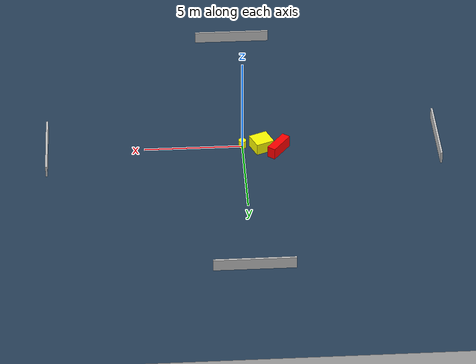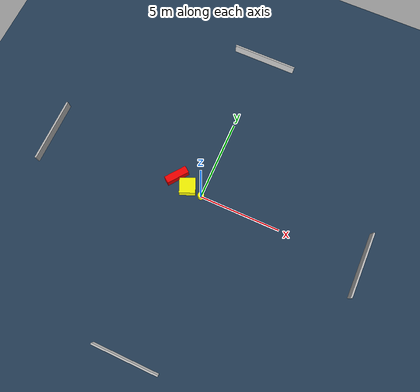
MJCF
<?xml version="1.0" ?>
<mujoco model="generated_environment">
  <option timestep="0.01" integrator="RK4" cone="elliptic"/>
  <default>
    <geom density="1"/>
  </default>
  <asset>
    <texture builtin="gradient" height="3072" name="skybox" rgb1="0.3 0.5 0.7" rgb2="0 0 0" type="skybox" width="512"/>
    <texture builtin="checker" height="300" name="groundplane" rgb1="0.2 0.3 0.4" rgb2="0.1 0.2 0.3" type="2d" width="300"/>
    <material name="groundplane" reflectance="0.2" texrepeat="5 5" texture="groundplane"/>
  </asset>
  <worldbody>
    <light dir="0 0 -1" directional="true" pos="0 0 1.5"/>
    <geom condim="3" friction="0.5 0.005 0.001" material="groundplane" name="floor" pos="0 0 0" size="0 0 0.05" type="plane"/>
    <body name="walls">
      <geom name="wall_1" condim="4" pos="-10.0 0.0 0.3" rgba="0.800000011920929 0.800000011920929 0.800000011920929 1.0" size="0.05 2.0 0.3" type="box"/>
      <geom name="wall_2" condim="4" pos="10.0 0.0 0.3" rgba="0.800000011920929 0.800000011920929 0.800000011920929 1.0" size="0.05 2.0 0.3" type="box"/>
      <geom name="wall_3" condim="4" pos="0.0 -10.0 0.3" rgba="0.800000011920929 0.800000011920929 0.800000011920929 1.0" size="2.0 0.05 0.3" type="box"/>
      <geom name="wall_4" condim="4" pos="0.0 10.0 0.3" rgba="0.800000011920929 0.800000011920929 0.800000011920929 1.0" size="2.0 0.05 0.3" type="box"/>
    </body>
    <body name="robot">
      <joint name="joint_x" type="slide" pos="0 0 0" axis="1 0 0"/>
      <joint name="joint_y" type="slide" pos="0 0 0" axis="0 1 0"/>
      <geom name="robot" type="cylinder" pos="0.0 0.0 0.2" size="0.2 0.2 0.0" mass="5.0" friction="1.0 0.005 0.0001" condim="4" rgba="1.0 1.0 0.0 1.0"/>
    </body>
    <body name="obstacle_1_movable">
      <geom name="obstacle_1_movable" condim="4" pos="-0.9636019630753513 0.17272425516137974 0.3" euler="0 0 202.65551562686642" friction="0.0 0.005 0.001" rgba="1.0 1.0 0.0 1.0" size="0.4824609618120528 0.46655550598303663 0.3" type="box" mass="0.1"/>
      <joint type="free"/>
    </body>
    <body name="obstacle_2_static">
      <geom name="obstacle_2_static" condim="4" pos="-1.826036702642115 0.5177774324024658 0.3" euler="0 0 233.03084697645477" friction="0.0 0.005 0.001" rgba="1.0 0.0 0.0 1.0" size="0.7048810953013533 0.21754627781671587 0.3" type="box"/>
    </body>
  </worldbody>
  <actuator>
    <motor name="actuator_x" joint="joint_x" gear="1" ctrlrange="-1 1"/>
    <motor name="actuator_y" joint="joint_y" gear="1" ctrlrange="-1 1"/>
  </actuator>
</mujoco>
